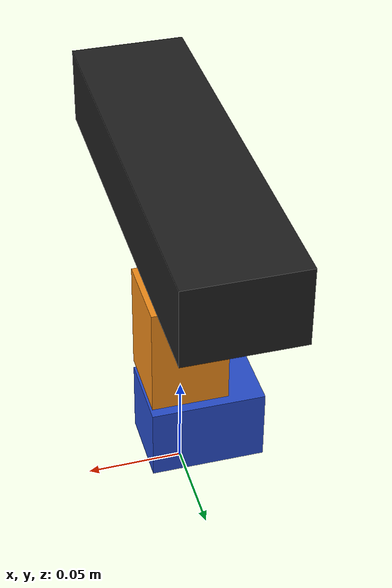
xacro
<?xml version="1.0"?>
<robot name="justina_head" xmlns:xacro="http://www.ros.org/wiki/xacro">
  <xacro:include filename="$(find justina_description)/urdf/justina_head.gazebo"/>

  <!--HEAD LINKS AND JOINTS-->
  <link name="head_link1">
    <visual>
      <origin xyz= "-0.01 0 0.03" rpy="0 0 0"/>
      <geometry><box size="0.06 0.04 0.04"/></geometry>
      <material name="blue"/>
    </visual>
    <collision>
      <origin xyz= "-0.01 0 0.03" rpy="0 0 0"/>
      <geometry><box size="0.06 0.04 0.04"/></geometry>
    </collision>
    <inertial>
      <origin xyz="0.0 0 0.0" rpy = "0 0 0"/>
      <mass value = "0.15" />
      <inertia ixx = "0.00052" iyy = "0.00052" izz = "0.00004" ixy = "0" ixz = "0" iyz = "0" />
    </inertial>
  </link>

  <link name="head_link2">
    <visual>
      <origin xyz= "0.0 0 0.035" rpy="0 0 0"/>
      <geometry>
        <box size="0.04 0.04 0.06"/>
      </geometry>
      <material name="orange"/>
    </visual>
    <collision>
      <origin xyz= "0.0 0 0.035" rpy="0 0 0"/>
      <geometry>
        <box size = "0.04 0.04 0.06"/>
      </geometry>
    </collision>
    <inertial>
      <origin xyz="0.0 0 0.0" rpy = "0 0 0"/>
      <mass value = "0.15" />
      <inertia ixx = "0.00003125" iyy = "0.00003125" izz = "0.00003125" ixy = "0" ixz = "0" iyz = "0" />
    </inertial>
  </link>

  <joint name="head_pan" type="revolute">
    <origin xyz="0.0 0 0.05" rpy="0 0 0" />
    <parent link="head_link1"/>
    <child link="head_link2"/>
    <axis xyz="0 0 1" />
    <dynamics damping ="0.1" />
    <limit effort="6.0" velocity="3.0" lower="-3.14" upper="3.14"/>
  </joint>

  <link name="neck_link">
    <visual>
      <origin xyz="0 0 0.035" rpy="0 0 0"/>
      <geometry>
        <box size="0.02 0.02 0.02"/>
      </geometry>
      <material name="black"/>
    </visual>
    <collision>
      <origin xyz= "0 0 0.035" rpy="0 0 0"/>
      <geometry>
        <box size="0.02 0.02 0.02"/>
      </geometry>
    </collision>
    <inertial>
      <origin xyz="0.0 0 0.0" rpy = "0 0 0"/>
      <mass value = "0.15" />
      <inertia ixx = "0.00006205" iyy = "0.000555" izz = "0.0005776" ixy = "0" ixz = "0" iyz = "0" />
    </inertial>
  </link>

  <joint name="head_tilt" type="revolute">
    <origin xyz="0.0 0 0.06" rpy="0 0 0" />
    <parent link="head_link2"/>
    <child link="neck_link"/>
    <axis xyz="0 -1 0" />
    <dynamics damping ="0.1" />
    <limit effort="6.0" velocity="3.0" lower="-1.2" upper="1.0"/>
  </joint>

  <link name="kinect_base">
    <visual>
      <origin xyz="0 0 0" rpy="0 0 0"/>
      <geometry>
        <box size=" 0.058 0.207 0.04"/>
      </geometry>
      <material name="black"/>
    </visual>
    <collision>
      <origin xyz= "0 0 0" rpy="0 0 0"/>
      <geometry>
        <box size=" 0.058 0.207 0.04"/>
      </geometry>
    </collision>
    <inertial>
      <origin xyz="0.0 0 0.0" rpy = "0 0 0"/>
      <mass value = "0.15" />
      <inertia ixx = "0.00006205" iyy = "0.000555" izz = "0.0005776" ixy = "0" ixz = "0" iyz = "0" />
    </inertial>
  </link>

  <joint name="kinect_base_connect" type="fixed">
    <origin xyz="0 0 0.065" rpy="0 0 0"/>
    <parent link="neck_link"/>
    <child link="kinect_base"/>
  </joint>

  <link name="kinect_link"/>

  <joint name="kinect_connect" type="fixed">
    <origin xyz="0 0 0" rpy="-1.5708 0 -1.5708"/>
    <parent link="kinect_base"/>
    <child link="kinect_link"/>
  </joint>
</robot>
